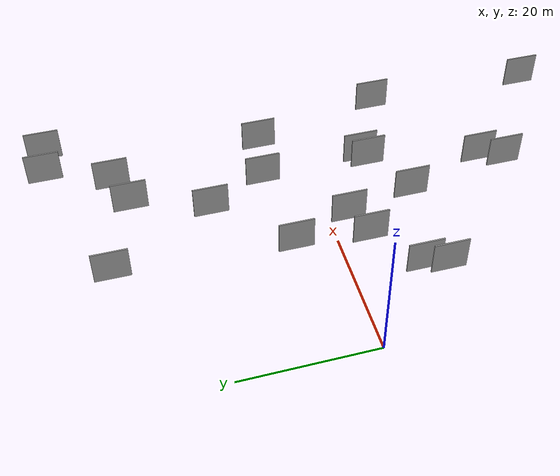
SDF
<sdf version="1.6">
 <world name="default">
  <scene>
   <sky><clouds><speed>12</speed></clouds></sky>
   <ambient>0.4 0.4 0.4 1</ambient>
   <background>0.7 0.7 0.7 1</background>
   <shadows>1</shadows>
  </scene>
  <gravity>0 0 -9.8066</gravity>
  <magnetic_field>6e-06 2.3e-05 -4.2e-05</magnetic_field>
  <physics default="0" name="default_physics" type="ode">
   <ode>
    <solver>
     <type>quick</type>
     <iters>10</iters>
     <sor>1.0</sor>
     <use_dynamic_moi_rescaling>0</use_dynamic_moi_rescaling>
    </solver>
    <constraints>
     <cfm>0</cfm>
     <erp>0.2</erp>
     <contact_max_correcting_vel>100</contact_max_correcting_vel>
     <contact_surface_layer>0.001</contact_surface_layer>
    </constraints>
   </ode>
   <max_step_size>0.004</max_step_size>
   <real_time_factor>1</real_time_factor>
   <real_time_update_rate>250</real_time_update_rate>
  </physics>
  <light name="sun" type="directional">
   <pose>0 0 10 0 0 0</pose>
   <diffuse>0.8 0.8 0.8 1</diffuse>
   <specular>0.2 0.2 0.2 1</specular>
   <attenuation>
    <range>1000</range>
    <constant>0.9</constant>
    <linear>0.01</linear>
    <quadratic>0.001</quadratic>
   </attenuation>
   <direction>-0.5 0.1 -0.9</direction>
  </light>
  <model name="grey_wall_1">
   <static>1</static>
   <pose>29.4389 28.0025 5.0 0.000000 0.000000 1.570796</pose>
   <link name="link">
    <pose>0 0 2.50 0 0 0</pose>
    <collision name="collision"><geometry><box><size>5.00 0.2 5.00</size></box></geometry></collision>
    <visual name="visual">
     <cast_shadows>0</cast_shadows>
     <geometry><box><size>5.00 0.2 5.00</size></box></geometry>
     <material>
      <script>
       <uri>model://grey_wall/materials/scripts</uri>
       <uri>model://grey_wall/materials/textures</uri>
       <name>vrc/grey_wall</name>
      </script>
     </material>
    </visual>
   </link>
  </model>
  <model name="grey_wall_2">
   <static>1</static>
   <pose>43.5524 38.7300 5.0 0.000000 0.000000 1.570796</pose>
   <link name="link">
    <pose>0 0 2.50 0 0 0</pose>
    <collision name="collision"><geometry><box><size>5.00 0.2 5.00</size></box></geometry></collision>
    <visual name="visual">
     <cast_shadows>0</cast_shadows>
     <geometry><box><size>5.00 0.2 5.00</size></box></geometry>
     <material>
      <script>
       <uri>model://grey_wall/materials/scripts</uri>
       <uri>model://grey_wall/materials/textures</uri>
       <name>vrc/grey_wall</name>
      </script>
     </material>
    </visual>
   </link>
  </model>
  <model name="grey_wall_3">
   <static>1</static>
   <pose>41.8122 -37.4870 5.0 0.000000 0.000000 1.570796</pose>
   <link name="link">
    <pose>0 0 2.50 0 0 0</pose>
    <collision name="collision"><geometry><box><size>5.00 0.2 5.00</size></box></geometry></collision>
    <visual name="visual">
     <cast_shadows>0</cast_shadows>
     <geometry><box><size>5.00 0.2 5.00</size></box></geometry>
     <material>
      <script>
       <uri>model://grey_wall/materials/scripts</uri>
       <uri>model://grey_wall/materials/textures</uri>
       <name>vrc/grey_wall</name>
      </script>
     </material>
    </visual>
   </link>
  </model>
  <model name="grey_wall_4">
   <static>1</static>
   <pose>6.7335 -11.1729 5.0 0.000000 0.000000 1.570796</pose>
   <link name="link">
    <pose>0 0 2.50 0 0 0</pose>
    <collision name="collision"><geometry><box><size>5.00 0.2 5.00</size></box></geometry></collision>
    <visual name="visual">
     <cast_shadows>0</cast_shadows>
     <geometry><box><size>5.00 0.2 5.00</size></box></geometry>
     <material>
      <script>
       <uri>model://grey_wall/materials/scripts</uri>
       <uri>model://grey_wall/materials/textures</uri>
       <name>vrc/grey_wall</name>
      </script>
     </material>
    </visual>
   </link>
  </model>
  <model name="grey_wall_5">
   <static>1</static>
   <pose>7.7138 -8.0457 5.0 0.000000 0.000000 1.570796</pose>
   <link name="link">
    <pose>0 0 2.50 0 0 0</pose>
    <collision name="collision"><geometry><box><size>5.00 0.2 5.00</size></box></geometry></collision>
    <visual name="visual">
     <cast_shadows>0</cast_shadows>
     <geometry><box><size>5.00 0.2 5.00</size></box></geometry>
     <material>
      <script>
       <uri>model://grey_wall/materials/scripts</uri>
       <uri>model://grey_wall/materials/textures</uri>
       <name>vrc/grey_wall</name>
      </script>
     </material>
    </visual>
   </link>
  </model>
  <model name="grey_wall_6">
   <static>1</static>
   <pose>34.7282 29.8574 5.0 0.000000 0.000000 1.570796</pose>
   <link name="link">
    <pose>0 0 2.50 0 0 0</pose>
    <collision name="collision"><geometry><box><size>5.00 0.2 5.00</size></box></geometry></collision>
    <visual name="visual">
     <cast_shadows>0</cast_shadows>
     <geometry><box><size>5.00 0.2 5.00</size></box></geometry>
     <material>
      <script>
       <uri>model://grey_wall/materials/scripts</uri>
       <uri>model://grey_wall/materials/textures</uri>
       <name>vrc/grey_wall</name>
      </script>
     </material>
    </visual>
   </link>
  </model>
  <model name="grey_wall_7">
   <static>1</static>
   <pose>17.0164 32.3342 5.0 0.000000 0.000000 1.570796</pose>
   <link name="link">
    <pose>0 0 2.50 0 0 0</pose>
    <collision name="collision"><geometry><box><size>5.00 0.2 5.00</size></box></geometry></collision>
    <visual name="visual">
     <cast_shadows>0</cast_shadows>
     <geometry><box><size>5.00 0.2 5.00</size></box></geometry>
     <material>
      <script>
       <uri>model://grey_wall/materials/scripts</uri>
       <uri>model://grey_wall/materials/textures</uri>
       <name>vrc/grey_wall</name>
      </script>
     </material>
    </visual>
   </link>
  </model>
  <model name="grey_wall_8">
   <static>1</static>
   <pose>30.8774 -6.6050 5.0 0.000000 0.000000 1.570796</pose>
   <link name="link">
    <pose>0 0 2.50 0 0 0</pose>
    <collision name="collision"><geometry><box><size>5.00 0.2 5.00</size></box></geometry></collision>
    <visual name="visual">
     <cast_shadows>0</cast_shadows>
     <geometry><box><size>5.00 0.2 5.00</size></box></geometry>
     <material>
      <script>
       <uri>model://grey_wall/materials/scripts</uri>
       <uri>model://grey_wall/materials/textures</uri>
       <name>vrc/grey_wall</name>
      </script>
     </material>
    </visual>
   </link>
  </model>
  <model name="grey_wall_9">
   <static>1</static>
   <pose>38.6736 39.1588 5.0 0.000000 0.000000 1.570796</pose>
   <link name="link">
    <pose>0 0 2.50 0 0 0</pose>
    <collision name="collision"><geometry><box><size>5.00 0.2 5.00</size></box></geometry></collision>
    <visual name="visual">
     <cast_shadows>0</cast_shadows>
     <geometry><box><size>5.00 0.2 5.00</size></box></geometry>
     <material>
      <script>
       <uri>model://grey_wall/materials/scripts</uri>
       <uri>model://grey_wall/materials/textures</uri>
       <name>vrc/grey_wall</name>
      </script>
     </material>
    </visual>
   </link>
  </model>
  <model name="grey_wall_10">
   <static>1</static>
   <pose>19.2969 -1.1684 5.0 0.000000 0.000000 1.570796</pose>
   <link name="link">
    <pose>0 0 2.50 0 0 0</pose>
    <collision name="collision"><geometry><box><size>5.00 0.2 5.00</size></box></geometry></collision>
    <visual name="visual">
     <cast_shadows>0</cast_shadows>
     <geometry><box><size>5.00 0.2 5.00</size></box></geometry>
     <material>
      <script>
       <uri>model://grey_wall/materials/scripts</uri>
       <uri>model://grey_wall/materials/textures</uri>
       <name>vrc/grey_wall</name>
      </script>
     </material>
    </visual>
   </link>
  </model>
  <model name="grey_wall_11">
   <static>1</static>
   <pose>29.5207 -7.3652 5.0 0.000000 0.000000 1.570796</pose>
   <link name="link">
    <pose>0 0 2.50 0 0 0</pose>
    <collision name="collision"><geometry><box><size>5.00 0.2 5.00</size></box></geometry></collision>
    <visual name="visual">
     <cast_shadows>0</cast_shadows>
     <geometry><box><size>5.00 0.2 5.00</size></box></geometry>
     <material>
      <script>
       <uri>model://grey_wall/materials/scripts</uri>
       <uri>model://grey_wall/materials/textures</uri>
       <name>vrc/grey_wall</name>
      </script>
     </material>
    </visual>
   </link>
  </model>
  <model name="grey_wall_12">
   <static>1</static>
   <pose>29.8530 8.5538 5.0 0.000000 0.000000 1.570796</pose>
   <link name="link">
    <pose>0 0 2.50 0 0 0</pose>
    <collision name="collision"><geometry><box><size>5.00 0.2 5.00</size></box></geometry></collision>
    <visual name="visual">
     <cast_shadows>0</cast_shadows>
     <geometry><box><size>5.00 0.2 5.00</size></box></geometry>
     <material>
      <script>
       <uri>model://grey_wall/materials/scripts</uri>
       <uri>model://grey_wall/materials/textures</uri>
       <name>vrc/grey_wall</name>
      </script>
     </material>
    </visual>
   </link>
  </model>
  <model name="grey_wall_13">
   <static>1</static>
   <pose>37.6269 7.2678 5.0 0.000000 0.000000 1.570796</pose>
   <link name="link">
    <pose>0 0 2.50 0 0 0</pose>
    <collision name="collision"><geometry><box><size>5.00 0.2 5.00</size></box></geometry></collision>
    <visual name="visual">
     <cast_shadows>0</cast_shadows>
     <geometry><box><size>5.00 0.2 5.00</size></box></geometry>
     <material>
      <script>
       <uri>model://grey_wall/materials/scripts</uri>
       <uri>model://grey_wall/materials/textures</uri>
       <name>vrc/grey_wall</name>
      </script>
     </material>
    </visual>
   </link>
  </model>
  <model name="grey_wall_14">
   <static>1</static>
   <pose>14.7326 -2.8354 5.0 0.000000 0.000000 1.570796</pose>
   <link name="link">
    <pose>0 0 2.50 0 0 0</pose>
    <collision name="collision"><geometry><box><size>5.00 0.2 5.00</size></box></geometry></collision>
    <visual name="visual">
     <cast_shadows>0</cast_shadows>
     <geometry><box><size>5.00 0.2 5.00</size></box></geometry>
     <material>
      <script>
       <uri>model://grey_wall/materials/scripts</uri>
       <uri>model://grey_wall/materials/textures</uri>
       <name>vrc/grey_wall</name>
      </script>
     </material>
    </visual>
   </link>
  </model>
  <model name="grey_wall_15">
   <static>1</static>
   <pose>21.5948 -11.2613 5.0 0.000000 0.000000 1.570796</pose>
   <link name="link">
    <pose>0 0 2.50 0 0 0</pose>
    <collision name="collision"><geometry><box><size>5.00 0.2 5.00</size></box></geometry></collision>
    <visual name="visual">
     <cast_shadows>0</cast_shadows>
     <geometry><box><size>5.00 0.2 5.00</size></box></geometry>
     <material>
      <script>
       <uri>model://grey_wall/materials/scripts</uri>
       <uri>model://grey_wall/materials/textures</uri>
       <name>vrc/grey_wall</name>
      </script>
     </material>
    </visual>
   </link>
  </model>
  <model name="grey_wall_16">
   <static>1</static>
   <pose>42.1962 -12.2441 5.0 0.000000 0.000000 1.570796</pose>
   <link name="link">
    <pose>0 0 2.50 0 0 0</pose>
    <collision name="collision"><geometry><box><size>5.00 0.2 5.00</size></box></geometry></collision>
    <visual name="visual">
     <cast_shadows>0</cast_shadows>
     <geometry><box><size>5.00 0.2 5.00</size></box></geometry>
     <material>
      <script>
       <uri>model://grey_wall/materials/scripts</uri>
       <uri>model://grey_wall/materials/textures</uri>
       <name>vrc/grey_wall</name>
      </script>
     </material>
    </visual>
   </link>
  </model>
  <model name="grey_wall_17">
   <static>1</static>
   <pose>26.1357 -23.5373 5.0 0.000000 0.000000 1.570796</pose>
   <link name="link">
    <pose>0 0 2.50 0 0 0</pose>
    <collision name="collision"><geometry><box><size>5.00 0.2 5.00</size></box></geometry></collision>
    <visual name="visual">
     <cast_shadows>0</cast_shadows>
     <geometry><box><size>5.00 0.2 5.00</size></box></geometry>
     <material>
      <script>
       <uri>model://grey_wall/materials/scripts</uri>
       <uri>model://grey_wall/materials/textures</uri>
       <name>vrc/grey_wall</name>
      </script>
     </material>
    </visual>
   </link>
  </model>
  <model name="grey_wall_18">
   <static>1</static>
   <pose>24.4154 -26.9257 5.0 0.000000 0.000000 1.570796</pose>
   <link name="link">
    <pose>0 0 2.50 0 0 0</pose>
    <collision name="collision"><geometry><box><size>5.00 0.2 5.00</size></box></geometry></collision>
    <visual name="visual">
     <cast_shadows>0</cast_shadows>
     <geometry><box><size>5.00 0.2 5.00</size></box></geometry>
     <material>
      <script>
       <uri>model://grey_wall/materials/scripts</uri>
       <uri>model://grey_wall/materials/textures</uri>
       <name>vrc/grey_wall</name>
      </script>
     </material>
    </visual>
   </link>
  </model>
  <model name="grey_wall_19">
   <static>1</static>
   <pose>25.4565 17.1690 5.0 0.000000 0.000000 1.570796</pose>
   <link name="link">
    <pose>0 0 2.50 0 0 0</pose>
    <collision name="collision"><geometry><box><size>5.00 0.2 5.00</size></box></geometry></collision>
    <visual name="visual">
     <cast_shadows>0</cast_shadows>
     <geometry><box><size>5.00 0.2 5.00</size></box></geometry>
     <material>
      <script>
       <uri>model://grey_wall/materials/scripts</uri>
       <uri>model://grey_wall/materials/textures</uri>
       <name>vrc/grey_wall</name>
      </script>
     </material>
    </visual>
   </link>
  </model>
  <model name="grey_wall_20">
   <static>1</static>
   <pose>15.7829 7.4024 5.0 0.000000 0.000000 1.570796</pose>
   <link name="link">
    <pose>0 0 2.50 0 0 0</pose>
    <collision name="collision"><geometry><box><size>5.00 0.2 5.00</size></box></geometry></collision>
    <visual name="visual">
     <cast_shadows>0</cast_shadows>
     <geometry><box><size>5.00 0.2 5.00</size></box></geometry>
     <material>
      <script>
       <uri>model://grey_wall/materials/scripts</uri>
       <uri>model://grey_wall/materials/textures</uri>
       <name>vrc/grey_wall</name>
      </script>
     </material>
    </visual>
   </link>
  </model>
 </world>
</sdf>
